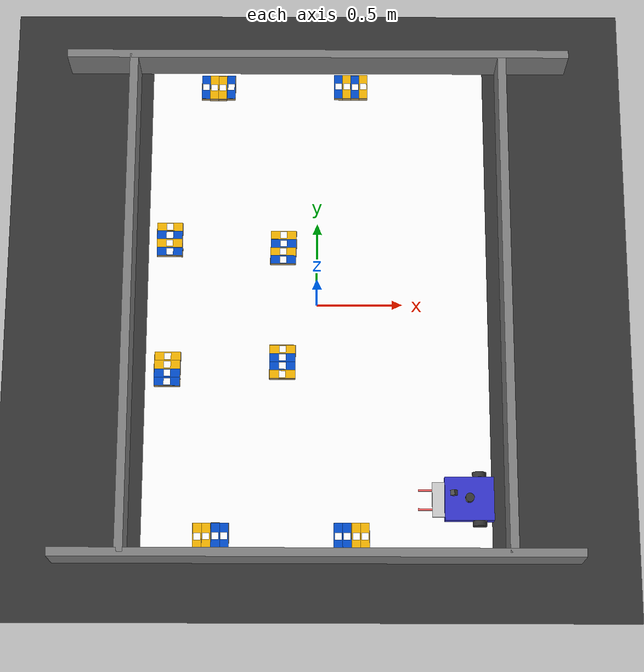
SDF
<sdf version='1.9'>
  <world name='eurobot_2026_arena'>
    <gravity>0 0 -9.81</gravity>
    <physics type='ode'>
      <max_step_size>0.001</max_step_size>
      <real_time_factor>1</real_time_factor>
      <real_time_update_rate>1000</real_time_update_rate>
    </physics>

    <plugin
    filename="libignition-gazebo-physics-system.so"
    name="ignition::gazebo::systems::Physics">
    </plugin>
    <plugin
    filename="libignition-gazebo-user-commands-system.so"
    name="ignition::gazebo::systems::UserCommands">
    </plugin>
    <plugin
    filename="libignition-gazebo-scene-broadcaster-system.so"
    name="ignition::gazebo::systems::SceneBroadcaster">
    </plugin>

    <magnetic_field>6e-06 2.3e-05 -4.2e-05</magnetic_field>
    <atmosphere type='adiabatic'/>

    <scene>
      <ambient>0.4 0.4 0.4 1</ambient>
      <background>0.7 0.7 0.7 1</background>
      <shadows>true</shadows>
    </scene>

    <model name='ground_plane'>
      <static>true</static>
      <link name='link'>
        <collision name='collision'>
          <geometry>
            <plane>
              <normal>0 0 1</normal>
              <size>20 20</size>
            </plane>
          </geometry>
          <surface>
            <friction><ode/></friction>
            <bounce/>
            <contact/>
          </surface>
        </collision>
        <visual name='visual'>
          <geometry>
            <plane>
              <normal>0 0 1</normal>
              <size>20 20</size>
            </plane>
          </geometry>
          <material>
            <ambient>0.8 0.8 0.8 1</ambient>
            <diffuse>0.2 0.2 0.2 1</diffuse>
            <specular>0.8 0.8 0.8 1</specular>
          </material>
        </visual>
        <pose>0 0 0 0 0 0</pose>
        <inertial>
          <pose>0 0 0 0 0 0</pose>
          <mass>1</mass>
          <inertia>
            <ixx>1</ixx><ixy>0</ixy><ixz>0</ixz>
            <iyy>1</iyy><iyz>0</iyz><izz>1</izz>
          </inertia>
        </inertial>
        <enable_wind>false</enable_wind>
      </link>
      <pose>0 0 0 0 0 0</pose>
      <self_collide>false</self_collide>
    </model>

    <model name="arena_walls">
  <static>true</static>

  <!-- North wall -->
  <link name="north_wall">
    <pose>0 1.5 0.125 0 0 0</pose>
    <collision name="collision">
      <geometry>
        <box>
          <size>3.0 0.05 0.25</size>
        </box>
      </geometry>
    </collision>
    <visual name="visual">
      <geometry>
        <box>
          <size>3.0 0.05 0.25</size>
        </box>
      </geometry>
      <material>
        <ambient>0.5 0.5 0.5 1</ambient>
        <diffuse>0.5 0.5 0.5 1</diffuse>
      </material>
    </visual>
  </link>

  <!-- South wall -->
  <link name="south_wall">
    <pose>0 -1.5 0.125 0 0 0</pose>
    <collision name="collision">
      <geometry>
        <box>
          <size>3.0 0.05 0.25</size>
        </box>
      </geometry>
    </collision>
    <visual name="visual">
      <geometry>
        <box>
          <size>3.0 0.05 0.25</size>
        </box>
      </geometry>
      <material>
        <ambient>0.5 0.5 0.5 1</ambient>
        <diffuse>0.5 0.5 0.5 1</diffuse>
      </material>
    </visual>
  </link>

  <!-- East wall -->
  <link name="east_wall">
    <pose>1.1 0 0.125 0 0 0</pose>
    <collision name="collision">
      <geometry>
        <box>
          <size>0.05 3.0 0.25</size>
        </box>
      </geometry>
    </collision>
    <visual name="visual">
      <geometry>
        <box>
          <size>0.05 3.0 0.25</size>
        </box>
      </geometry>
      <material>
        <ambient>0.5 0.5 0.5 1</ambient>
        <diffuse>0.5 0.5 0.5 1</diffuse>
      </material>
    </visual>
  </link>

  <!-- West wall -->
  <link name="west_wall">
    <pose>-1.1 0 0.125 0 0 0</pose>
    <collision name="collision">
      <geometry>
        <box>
          <size>0.05 3.0 0.25</size>
        </box>
      </geometry>
    </collision>
    <visual name="visual">
      <geometry>
        <box>
          <size>0.05 3.0 0.25</size>
        </box>
      </geometry>
      <material>
        <ambient>0.5 0.5 0.5 1</ambient>
        <diffuse>0.5 0.5 0.5 1</diffuse>
      </material>
    </visual>
  </link>

</model>

    <!-- Include models with absolute paths -->
    <include>
      <uri>model://mat</uri>
      <name>floor_mat</name>
      <pose>0 -0.00433 0 0 0 0</pose>
    </include>

    <include>
      <uri>model://simple_robot</uri>
      <name>simple_robot</name>
      <pose>0.868771 -1.16123 0.0035 0 0 3.1415</pose>
    </include>

    <!-- Blue Crates -->
    <include>
      <uri>model://crate</uri>
      <name>crate</name>
      <pose>0.123039 -1.3753 0.018499 0 0 -1.5642</pose>
    </include>

    <include>
      <uri>model://crate</uri>
      <name>crate_1</name>
      <pose>0.173038 -1.37506 0.0185 0 0 -1.5642</pose>
    </include>

    <include>
      <uri>model://crate</uri>
      <name>crate_2</name>
      <pose>-0.52415 -1.37532 0.0185 -0 -0 -1.5642</pose>
    </include>

    <include>
      <uri>model://crate</uri>
      <name>crate_3</name>
      <pose>-0.574153 -1.375 0.018499 0 0 -1.5642</pose>
    </include>

    <include>
      <uri>model://crate</uri>
      <name>crate_4</name>
      <pose>-0.870598 -0.472588 0.018499 -0 -0 3.13271</pose>
    </include>

    <include>
      <uri>model://crate</uri>
      <name>crate_5</name>
      <pose>-0.870996 -0.422215 0.0185 -0 -0 3.13766</pose>
    </include>

    <include>
      <uri>model://crate</uri>
      <name>crate_6</name>
      <pose>-0.873079 0.321639 0.018499 0 0 3.13271</pose>
    </include>

    <include>
      <uri>model://crate</uri>
      <name>crate_7</name>
      <pose>-0.875191 0.424269 0.0185 -0 -0 3.13678</pose>
    </include>

    <include>
      <uri>model://crate</uri>
      <name>crate_8</name>
      <pose>-0.677266 1.37341 0.0185 -0 0 1.56396</pose>
    </include>

    <include>
      <uri>model://crate</uri>
      <name>crate_9</name>
      <pose>-0.525644 1.37394 0.018499 0 -0 1.56191</pose>
    </include>

    <include>
      <uri>model://crate</uri>
      <name>crate_10</name>
      <pose>0.125086 1.37882 0.0185 -0 -0 1.56979</pose>
    </include>

    <include>
      <uri>model://crate</uri>
      <name>crate_11</name>
      <pose>0.225085 1.37758 0.0185 -0 -0 1.56979</pose>
    </include>

    <include>
      <uri>model://crate</uri>
      <name>crate_12</name>
      <pose>-0.198373 0.372357 0.0185 0 -0 3.13698</pose>
    </include>

    <include>
      <uri>model://crate</uri>
      <name>crate_13</name>
      <pose>-0.201906 0.272373 0.0185 -0 -0 3.13697</pose>
    </include>

    <include>
      <uri>model://crate</uri>
      <name>crate_14</name>
      <pose>-0.201321 -0.327593 0.0185 0 0 3.13843</pose>
    </include>

    <include>
      <uri>model://crate</uri>
      <name>crate_15</name>
      <pose>-0.201382 -0.377593 0.0185 -0 -0 3.13843</pose>
    </include>

    <!-- Yellow Crates -->
    <include>
      <uri>model://crate_yellow</uri>
      <name>crate_yellow_1</name>
      <pose>0.22501 -1.37446 0.018499 0 0 1.57972</pose>
    </include>

    <include>
      <uri>model://crate_yellow</uri>
      <name>crate_yellow_2</name>
      <pose>0.275049 -1.37451 0.018499 -0 -0 1.57972</pose>
    </include>

    <include>
      <uri>model://crate_yellow</uri>
      <name>crate_yellow_3</name>
      <pose>0.175086 1.37855 0.0185 -0 0 1.56979</pose>
    </include>

    <include>
      <uri>model://crate_yellow</uri>
      <name>crate_yellow_4</name>
      <pose>0.275086 1.37884 0.0185 0 -0 1.56979</pose>
    </include>

    <include>
      <uri>model://crate_yellow</uri>
      <name>crate_yellow_5</name>
      <pose>-0.626897 -1.37615 0.018499 -0 0 1.57972</pose>
    </include>

    <include>
      <uri>model://crate_yellow</uri>
      <name>crate_yellow_6</name>
      <pose>-0.677176 -1.3772 0.018499 -0 0 1.57972</pose>
    </include>

    <include>
      <uri>model://crate_yellow</uri>
      <name>crate_yellow_7</name>
      <pose>-0.871546 -0.371693 0.0185 -0 0 0.003064</pose>
    </include>

    <include>
      <uri>model://crate_yellow</uri>
      <name>crate_yellow_8</name>
      <pose>-0.869885 -0.321019 0.018499 0 -0 0.003176</pose>
    </include>

    <include>
      <uri>model://crate_yellow</uri>
      <name>crate_yellow_9</name>
      <pose>-0.875168 0.373791 0.0185 0 -0 0.001573</pose>
    </include>

    <include>
      <uri>model://crate_yellow</uri>
      <name>crate_yellow_10</name>
      <pose>-0.875208 0.474528 0.0185 -0 0 -0.001354</pose>
    </include>

    <include>
      <uri>model://crate_yellow</uri>
      <name>crate_yellow_11</name>
      <pose>-0.627211 1.37193 0.0185 0 -0 1.56481</pose>
    </include>

    <include>
      <uri>model://crate_yellow</uri>
      <name>crate_yellow_12</name>
      <pose>-0.577043 1.37114 0.0185 0 -0 1.5671</pose>
    </include>

    <include>
      <uri>model://crate_yellow</uri>
      <name>crate_yellow_13</name>
      <pose>-0.199325 0.424578 0.018499 -0 -0 -0.001354</pose>
    </include>

    <include>
      <uri>model://crate_yellow</uri>
      <name>crate_yellow_14</name>
      <pose>-0.201084 0.32237 0.0185 -0 -0 -0.004617</pose>
    </include>

    <include>
      <uri>model://crate_yellow</uri>
      <name>crate_yellow_15</name>
      <pose>-0.200865 -0.277595 0.0185 -0 0 -0.003162</pose>
    </include>

    <include>
      <uri>model://crate_yellow</uri>
      <name>crate_yellow_16</name>
      <pose>-0.201808 -0.427592 0.0185 0 0 -0.00316</pose>
    </include>

    <!-- Light -->
    <light name="sun" type="directional">
      <pose>0 0 0 0 0 0</pose>
      <cast_shadows>false</cast_shadows>
      <intensity>1</intensity>
      <direction>-0.5 0.5 -1</direction>
      <diffuse>1 1 1 1</diffuse>
      <specular>0.5 0.5 0.5 1</specular>
    </light>

  </world>
</sdf>

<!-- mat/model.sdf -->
<sdf version="1.9">
  <!-- Define a floor mat (3000mm x 2000mm x 70mm) -->
	<model name="floor_mat">
		<static>true</static>
		<link name="floor_link">
			<collision name="collision">
				<geometry>
					<box>
						<size>2 3 0.007</size>  <!-- 3000mm x 2000mm x 70mm -->
					</box>
				</geometry>
				<surface>
					<friction>
						<ode>
							<mu>0.9</mu>
							<mu2>0.9</mu2>
						</ode>
					</friction>
				</surface>
			</collision>
			<visual name="visual">
					<geometry>
							<box>
									<size>2 3 0.007</size> <!-- 3000mm x 2000mm x 70mm -->
							</box>
					</geometry>
					<material>
							<diffuse>1 1 1 1</diffuse>
							<pbr>
									<metal>
											<albedo_map>model://mat/mat_small.png</albedo_map>
											<metalness>0.0</metalness>
											<roughness>0.8</roughness>
									</metal>
							</pbr>
					</material>
			</visual>
		</link>
	</model>
</sdf>

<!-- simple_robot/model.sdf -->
<sdf version="1.9">
  <model name="simple_robot" canonical_link="base_link">
    <static>false</static>
    <pose>0 0 0 0 0 0</pose>

    <!-- ====================== BASE LINK ====================== -->
    <!-- Base dimensions: 280mm x 250mm x 70mm -->
    <!-- Base center is at wheel center height (25mm) -->
    <link name="base_link">
      <pose relative_to="__model__">0 0 0.025 0 0 0</pose>
      <inertial>
        <mass>3.0</mass>
        <inertia>
          <ixx>0.0186</ixx>
          <ixy>0</ixy>
          <ixz>0</ixz>
          <iyy>0.0228</iyy>
          <iyz>0</iyz>
          <izz>0.0391</izz>
        </inertia>
      </inertial>
      <visual name="base_visual">
        <geometry>
          <box><size>0.28 0.25 0.07</size></box>
        </geometry>
        <material>
          <ambient>0.2 0.2 0.8 1</ambient>
          <diffuse>0.2 0.2 0.8 1</diffuse>
          <specular>0.4 0.4 0.9 1</specular>
        </material>
      </visual>
      <collision name="base_collision">
        <geometry>
          <box><size>0.28 0.25 0.07</size></box>
        </geometry>
      </collision>
    </link>

    <!-- ====================== BASE FOOTPRINT ====================== -->
    <link name="base_footprint">
      <pose relative_to="base_link">0 0 -0.025 0 0 0</pose>
    </link>

    <joint name="base_to_footprint" type="fixed">
      <parent>base_link</parent>
      <child>base_footprint</child>
    </joint>

    <!-- ====================== LEFT WHEEL ====================== -->
    <!-- Wheel: 80mm diameter (40mm radius), 30mm width -->
    <!-- Position: 80mm from rear edge = -0.06m from base center -->
    <!-- Wheelbase: 220mm = 0.11m from center to each side -->
    <!-- Wheels OUTSIDE the base: 250mm/2 = 125mm + 15mm (half wheel width) = 140mm from center -->
    <link name="left_wheel">
      <pose relative_to="base_link">-0.06 0.14 0 -1.5707 0 0</pose>
      <inertial>
        <mass>0.3</mass>
        <inertia>
          <ixx>0.000240</ixx>
          <ixy>0</ixy>
          <ixz>0</ixz>
          <iyy>0.000240</iyy>
          <iyz>0</iyz>
          <izz>0.000480</izz>
        </inertia>
      </inertial>
      <visual name="wheel_visual">
        <geometry>
          <cylinder>
            <radius>0.04</radius>
            <length>0.03</length>
          </cylinder>
        </geometry>
        <material>
          <ambient>0.1 0.1 0.1 1</ambient>
          <diffuse>0.2 0.2 0.2 1</diffuse>
          <specular>0.3 0.3 0.3 1</specular>
        </material>
      </visual>
      <collision name="wheel_collision">
        <geometry>
          <cylinder>
            <radius>0.04</radius>
            <length>0.03</length>
          </cylinder>
        </geometry>
        <surface>
          <friction>
            <ode>
              <mu>1.0</mu>
              <mu2>1.0</mu2>
              <slip1>0.0</slip1>
              <slip2>0.0</slip2>
            </ode>
          </friction>
          <contact>
            <ode>
              <kp>1e6</kp>
              <kd>100</kd>
            </ode>
          </contact>
        </surface>
      </collision>
    </link>

    <!-- ====================== RIGHT WHEEL ====================== -->
    <link name="right_wheel">
      <pose relative_to="base_link">-0.06 -0.14 0 -1.5707 0 0</pose>
      <inertial>
        <mass>0.3</mass>
        <inertia>
          <ixx>0.000240</ixx>
          <ixy>0</ixy>
          <ixz>0</ixz>
          <iyy>0.000240</iyy>
          <iyz>0</iyz>
          <izz>0.000480</izz>
        </inertia>
      </inertial>
      <visual name="wheel_visual">
        <geometry>
          <cylinder>
            <radius>0.04</radius>
            <length>0.03</length>
          </cylinder>
        </geometry>
        <material>
          <ambient>0.1 0.1 0.1 1</ambient>
          <diffuse>0.2 0.2 0.2 1</diffuse>
          <specular>0.3 0.3 0.3 1</specular>
        </material>
      </visual>
      <collision name="wheel_collision">
        <geometry>
          <cylinder>
            <radius>0.04</radius>
            <length>0.03</length>
          </cylinder>
        </geometry>
        <surface>
          <friction>
            <ode>
              <mu>1.0</mu>
              <mu2>1.0</mu2>
              <slip1>0.0</slip1>
              <slip2>0.0</slip2>
            </ode>
          </friction>
          <contact>
            <ode>
              <kp>1e6</kp>
              <kd>100</kd>
            </ode>
          </contact>
        </surface>
      </collision>
    </link>

    <!-- ====================== CASTER WHEEL ====================== -->
    <link name="caster">
      <pose relative_to="base_link">0.11 0 -0.020 0 0 0</pose>
      <inertial>
        <mass>0.05</mass>
        <inertia>
          <ixx>0.00008</ixx>
          <ixy>0</ixy>
          <ixz>0</ixz>
          <iyy>0.00008</iyy>
          <iyz>0</iyz>
          <izz>0.00008</izz>
        </inertia>
      </inertial>
      <visual name="caster_visual">
        <geometry>
          <sphere><radius>0.020</radius></sphere>
        </geometry>
        <material>
          <ambient>0.3 0.3 0.3 1</ambient>
          <diffuse>0.5 0.5 0.5 1</diffuse>
          <specular>0.8 0.8 0.8 1</specular>
        </material>
      </visual>
      <collision name="caster_collision">
        <geometry>
          <sphere><radius>0.020</radius></sphere>
        </geometry>
        <surface>
          <friction>
            <ode>
              <mu>0.01</mu>
              <mu2>0.01</mu2>
              <slip1>1.0</slip1>
              <slip2>1.0</slip2>
            </ode>
          </friction>
          <contact>
            <ode>
              <kp>1e6</kp>
              <kd>100</kd>
            </ode>
          </contact>
        </surface>
      </collision>
    </link>

    <!-- ====================== GRIPPER BASE ====================== -->
    <!-- Mounted at front, height adjusted for crate pickup from longest side (150mm) -->
    <link name="gripper_base">
      <pose relative_to="base_link">0.17 0 -0.02 0 0 0</pose>
      <inertial>
        <mass>0.3</mass>
        <inertia>
          <ixx>0.0002</ixx>
          <iyy>0.0002</iyy>
          <izz>0.0002</izz>
          <ixy>0</ixy>
          <ixz>0</ixz>
          <iyz>0</iyz>
        </inertia>
      </inertial>
      <visual name="gripper_base_visual">
        <geometry>
          <box><size>0.08 0.20 0.03</size></box>
        </geometry>
        <material>
          <ambient>0.7 0.7 0.7 1</ambient>
          <diffuse>0.8 0.8 0.8 1</diffuse>
          <specular>0.9 0.9 0.9 1</specular>
        </material>
      </visual>
      <collision name="gripper_base_collision">
        <geometry>
          <box><size>0.08 0.20 0.03</size></box>
        </geometry>
      </collision>
    </link>

    <!-- ====================== LEFT GRIPPER FINGER ====================== -->
    <!-- Grips crate from 150mm (longest) side, positioned to grab 30mm height -->
    <link name="left_finger">
      <pose relative_to="gripper_base">0.04  0.055 0.0 0 0 0</pose>
      <inertial>
        <mass>0.08</mass>
        <inertia>
          <ixx>0.00008</ixx>
          <iyy>0.00002</iyy>
          <izz>0.00008</izz>
          <ixy>0</ixy>
          <ixz>0</ixz>
          <iyz>0</iyz>
        </inertia>
      </inertial>
      <visual name="left_finger_visual">
        <geometry>
          <box><size>0.16 0.01 0.02</size></box>
        </geometry>
        <material>
          <ambient>0.9 0.3 0.3 1</ambient>
          <diffuse>1.0 0.4 0.4 1</diffuse>
          <specular>1.0 0.6 0.6 1</specular>
        </material>
      </visual>
      <collision name="left_finger_collision">
        <geometry>
          <box><size>0.16 0.01 0.02</size></box>
        </geometry>
        <surface>
          <friction>
            <ode>
              <mu>8.0</mu>
              <mu2>8.0</mu2>
            </ode>
          </friction>
          <contact>
            <ode>
              <kp>1e6</kp>
              <kd>100</kd>
              <max_vel>0.01</max_vel>
              <min_depth>0.001</min_depth>
            </ode>
          </contact>
        </surface>
      </collision>
      <sensor name="left_finger_contact" type="contact">
    <always_on>true</always_on>
    <update_rate>200</update_rate>
    <contact>
      <collision>left_finger_collision</collision>
    </contact>
    <topic>/gripper/left/contact</topic>
  </sensor>
    </link>

    <!-- ====================== RIGHT GRIPPER FINGER ====================== -->
    <link name="right_finger">
      <pose relative_to="gripper_base">0.04  -0.055 0.0 0 0 0</pose>
      <inertial>
        <mass>0.08</mass>
        <inertia>
          <ixx>0.00008</ixx>
          <iyy>0.00002</iyy>
          <izz>0.00008</izz>
          <ixy>0</ixy>
          <ixz>0</ixz>
          <iyz>0</iyz>
        </inertia>
      </inertial>
      <visual name="right_finger_visual">
        <geometry>
          <box><size>0.16 0.01 0.02</size></box>
        </geometry>
        <material>
          <ambient>0.9 0.3 0.3 1</ambient>
          <diffuse>1.0 0.4 0.4 1</diffuse>
          <specular>1.0 0.6 0.6 1</specular>
        </material>
      </visual>
      <collision name="right_finger_collision">
        <geometry>
          <box><size>0.16 0.01 0.02</size></box>
        </geometry>
        <surface>
          <friction>
            <ode>
              <mu>8.0</mu>
              <mu2>8.0</mu2>
            </ode>
          </friction>
          <contact>
            <ode>
              <kp>1e6</kp>
              <kd>100</kd>
              <max_vel>0.01</max_vel>
              <min_depth>0.001</min_depth>
            </ode>
          </contact>
        </surface>
      </collision>
      <sensor name="right_finger_contact" type="contact">
  <always_on>true</always_on>
  <update_rate>200</update_rate>
  <contact>
    <collision>right_finger_collision</collision>
  </contact>
  <topic>/gripper/right/contact</topic>
</sensor>
    </link>

    <!-- ====================== LIDAR LINK ====================== -->
    <!-- Mounted on top of base for 360° visibility -->
    <link name="lidar_link">
      <pose relative_to="base_link">0 0 0.050 0 0 0</pose>
      <inertial>
        <mass>0.1</mass>
        <inertia>
          <ixx>0.00002</ixx>
          <iyy>0.00002</iyy>
          <izz>0.00002</izz>
          <ixy>0</ixy>
          <ixz>0</ixz>
          <iyz>0</iyz>
        </inertia>
      </inertial>
      <visual name="lidar_visual">
        <geometry>
          <cylinder>
            <radius>0.025</radius>
            <length>0.04</length>
          </cylinder>
        </geometry>
        <material>
          <ambient>0.1 0.1 0.1 1</ambient>
          <diffuse>0.2 0.2 0.2 1</diffuse>
          <specular>0.3 0.3 0.3 1</specular>
        </material>
      </visual>
      <sensor name="lidar_sensor" type="gpu_lidar">
        <topic>/scan</topic>
        <update_rate>10</update_rate>
        <always_on>true</always_on>
        <visualize>true</visualize>
        <lidar>
          <scan>
            <horizontal>
              <samples>360</samples>
              <resolution>1</resolution>
              <min_angle>-3.14159</min_angle>
              <max_angle>3.14159</max_angle>
            </horizontal>
            <vertical>
              <samples>1</samples>
              <resolution>1</resolution>
              <min_angle>0</min_angle>
              <max_angle>0</max_angle>
            </vertical>
          </scan>
          <range>
            <min>0.08</min>
            <max>10.0</max>
            <resolution>0.01</resolution>
          </range>
          <noise>
            <type>gaussian</type>
            <mean>0.0</mean>
            <stddev>0.01</stddev>
          </noise>
        </lidar>
        <frame_id>lidar_link</frame_id>
      </sensor>
    </link>

    <!-- ====================== CAMERA LINK ====================== -->
    <link name="camera_link">
      <pose relative_to="base_link">0.10 0 0.20 0 0.7 0</pose>
      <inertial>
        <mass>0.05</mass>
        <inertia>
          <ixx>0.00001</ixx>
          <iyy>0.00001</iyy>
          <izz>0.00001</izz>
          <ixy>0</ixy>
          <ixz>0</ixz>
          <iyz>0</iyz>
        </inertia>
      </inertial>
      <visual name="camera_visual">
        <geometry>
          <box><size>0.03 0.03 0.03</size></box>
        </geometry>
        <material>
          <ambient>0.2 0.2 0.2 1</ambient>
          <diffuse>0.3 0.3 0.3 1</diffuse>
          <specular>0.5 0.5 0.5 1</specular>
        </material>
      </visual>
      <sensor name="camera_sensor" type="camera">
        <always_on>true</always_on>
        <update_rate>30</update_rate>
        <visualize>true</visualize>
        <camera>
          <horizontal_fov>1.047</horizontal_fov>
          <image>
            <width>640</width>
            <height>480</height>
            <format>R8G8B8</format>
          </image>
          <clip>
            <near>0.1</near>
            <far>100</far>
          </clip>
          <noise>
            <type>gaussian</type>
            <mean>0.0</mean>
            <stddev>0.007</stddev>
          </noise>
        </camera>
        <topic>/camera</topic>
      </sensor>
    </link>

    <!-- ====================== JOINTS ====================== -->

    <!-- Wheel Joints -->
    <joint name="left_wheel_joint" type="revolute">
      <parent>base_link</parent>
      <child>left_wheel</child>
      <axis>
        <xyz>0 0 1</xyz>
        <limit>
          <lower>-1e16</lower>
          <upper>1e16</upper>
        </limit>
      </axis>
    </joint>

    <joint name="right_wheel_joint" type="revolute">
      <parent>base_link</parent>
      <child>right_wheel</child>
      <axis>
        <xyz>0 0 1</xyz>
        <limit>
          <lower>-1e16</lower>
          <upper>1e16</upper>
        </limit>
      </axis>
    </joint>

    <!-- Caster Joint -->
    <joint name="caster_joint" type="fixed">
      <parent>base_link</parent>
      <child>caster</child>
    </joint>

    <!-- Gripper Joints -->
    <joint name="gripper_base_joint" type="fixed">
      <parent>base_link</parent>
      <child>gripper_base</child>
    </joint>

    <joint name="left_finger_joint" type="prismatic">
  <parent>gripper_base</parent>
  <child>left_finger</child>

  <axis>
    <xyz>0 1 0</xyz>

    <limit>
      <!-- Allows finger to move inward and outward -->
      <lower>-0.04</lower>
      <upper>0.04</upper>
      <effort>40</effort>
      <velocity>0.05</velocity>
    </limit>

    <dynamics>
      <damping>3.0</damping>
      <friction>0.5</friction>
    </dynamics>
  </axis>
  </joint>

    <joint name="right_finger_joint" type="prismatic">
  <parent>gripper_base</parent>
  <child>right_finger</child>

  <axis>
    <xyz>0 -1 0</xyz>

    <limit>

      <lower>-0.04</lower>
      <upper>0.04</upper>
      <effort>40</effort>
      <velocity>0.05</velocity>
    </limit>

    <dynamics>
      <damping>3.0</damping>
      <friction>0.5</friction>
    </dynamics>
  </axis>
  </joint>

    <!-- Sensor Joints -->
    <joint name="lidar_joint" type="fixed">
      <parent>base_link</parent>
      <child>lidar_link</child>
    </joint>

    <joint name="camera_joint" type="fixed">
      <parent>base_link</parent>
      <child>camera_link</child>
    </joint>

    <!-- ====================== DIFFERENTIAL DRIVE PLUGIN ====================== -->
    <plugin
      filename="libignition-gazebo-diff-drive-system.so"
      name="ignition::gazebo::systems::DiffDrive">
      <left_joint>left_wheel_joint</left_joint>
      <right_joint>right_wheel_joint</right_joint>
      <wheel_separation>0.28</wheel_separation>
      <wheel_radius>0.04</wheel_radius>
      <odom_publish_frequency>50</odom_publish_frequency>
      <topic>cmd_vel</topic>
      <odom_topic>odom</odom_topic>
      <tf_topic>/tf</tf_topic>
      <frame_id>odom</frame_id>
      <child_frame_id>base_link</child_frame_id>
      <max_linear_acceleration>2.0</max_linear_acceleration>
      <max_angular_acceleration>3.0</max_angular_acceleration>
      <max_linear_velocity>1.0</max_linear_velocity>
      <max_angular_velocity>2.0</max_angular_velocity>
    </plugin>

    <!-- ====================== JOINT STATE PUBLISHER ====================== -->
    <plugin
      filename="libignition-gazebo-joint-state-publisher-system.so"
      name="ignition::gazebo::systems::JointStatePublisher">
      <joint_name>left_wheel_joint</joint_name>
      <joint_name>right_wheel_joint</joint_name>
      <joint_name>left_finger_joint</joint_name>
      <joint_name>right_finger_joint</joint_name>
      <topic>/joint_states</topic>
      <update_rate>50</update_rate>
    </plugin>

    <!-- ====================== SENSORS SYSTEM ====================== -->
    <plugin
      filename="libignition-gazebo-sensors-system.so"
      name="ignition::gazebo::systems::Sensors">
      <render_engine>ogre2</render_engine>
    </plugin>

    <!-- ====================== POSE PUBLISHER ====================== -->
    <plugin
      filename="libignition-gazebo-pose-publisher-system.so"
      name="ignition::gazebo::systems::PosePublisher">
      <publish_link_pose>true</publish_link_pose>
      <publish_collision_pose>false</publish_collision_pose>
      <publish_visual_pose>false</publish_visual_pose>
      <publish_nested_model_pose>true</publish_nested_model_pose>
      <use_pose_vector_msg>true</use_pose_vector_msg>
      <static_publisher>true</static_publisher>
      <static_update_frequency>10</static_update_frequency>
    </plugin>
    <!-- ====================== Contact Sensor ====================== -->
    <plugin filename="libignition-gazebo-contact-system.so"
        name="ignition::gazebo::systems::Contact">
    </plugin>
    <!-- ====================== ROS2_CONTROL DEFINITION ====================== -->
    <ros2_control name="GripperSystem" type="system">
    <hardware>
    <plugin>ign_ros2_control/IgnitionSystem</plugin>
    </hardware>

    <joint name="left_finger_joint">
    <command_interface name="position">
      <param name="min">-0.04</param>
      <param name="max">0.04</param>
    </command_interface>
    <state_interface name="position"/>
    <state_interface name="velocity"/>
    <state_interface name="effort"/>
    </joint>

    <joint name="right_finger_joint">
    <command_interface name="position">
      <param name="min">-0.04</param>
      <param name="max">0.04</param>
    </command_interface>
    <state_interface name="position"/>
    <state_interface name="velocity"/>
    <state_interface name="effort"/>
  </joint>
  </ros2_control>

<!-- ====================== IGN_ROS2_CONTROL PLUGIN ====================== -->
<plugin
  filename="libign_ros2_control-system.so"
  name="ign_ros2_control::IgnitionROS2ControlPlugin">
  <parameters>$ENV{GRIPPER_CONTROLLER_YAML}</parameters>
</plugin>

  </model>
</sdf>

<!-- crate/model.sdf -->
<sdf version="1.9">
  <model name="crate_blue">
    <static>false</static>
    <link name="link">
      <inertial>
        <mass>0.17</mass>
        <inertia>
          <ixx>0.000047</ixx>
          <iyy>0.000336</iyy>
          <izz>0.000361</izz>
          <ixy>0</ixy>
          <ixz>0</ixz>
          <iyz>0</iyz>
        </inertia>
      </inertial>

      <!-- Single collision box for the entire crate -->
      <collision name="collision">
        <geometry>
          <box>
            <size>0.15 0.05 0.03</size>
          </box>
        </geometry>
        <surface>
          <friction>
            <ode>
              <mu>1.0</mu>
              <mu2>1.0</mu2>
            </ode>
          </friction>
          <bounce/>
          <contact/>
        </surface>
      </collision>

      <!-- TOP FACE: Blue plastic base (NO texture here)                -->
      <visual name="visual_top_base">
        <pose>0 0 0.015 0 0 0</pose>
        <geometry>
          <box>
            <size>0.15 0.05 0.001</size>
          </box>
        </geometry>
        <material>
          <ambient>0.0 0.3 0.8 1</ambient>
          <diffuse>0.0 0.3 0.8 1</diffuse>
          <specular>0.2 0.2 0.2 1</specular>
        </material>
      </visual>

      <!-- ArUco marker ID 36 (40mm × 40mm) centered on TOP face -->
      <visual name="aruco_top">
        <pose>0 0 0.0155 0 0 0</pose>  <!-- 0.1mm above blue surface -->
        <geometry>
          <box>
            <size>0.04 0.04 0.0001</size>  <!-- 40mm × 40mm × 0.1mm -->
          </box>
        </geometry>
        <material>
          <!-- WHITE material = no color tinting -->
          <ambient>1.0 1.0 1.0 1.0</ambient>
          <diffuse>1.0 1.0 1.0 1.0</diffuse>
          <specular>0.1 0.1 0.1 1.0</specular>
          <emissive>0.0 0.0 0.0 1.0</emissive>

          <pbr>
            <metal>
              <albedo_map>model://crate/materials/textures/aruco_blue_36.png</albedo_map>
            </metal>
          </pbr>
        </material>
      </visual>

      <!-- BOTTOM FACE: Yellow plastic base (NO texture here)           -->
      <visual name="visual_bottom_base">
        <pose>0 0 -0.015 0 0 0</pose>
        <geometry>
          <box>
            <size>0.15 0.05 0.001</size>
          </box>
        </geometry>
        <material>
          <ambient>0.95 0.7 0.0 1</ambient>
          <diffuse>0.95 0.7 0.0 1</diffuse>
          <specular>0.2 0.2 0.2 1</specular>
        </material>
      </visual>

      <!-- ArUco marker ID 47 (40mm × 40mm) centered on BOTTOM face -->
      <visual name="aruco_bottom">
        <pose>0 0 -0.0155 0 0 0</pose>  <!-- 0.1mm below yellow surface -->
        <geometry>
          <box>
            <size>0.04 0.04 0.0001</size>  <!-- 40mm × 40mm × 0.1mm -->
          </box>
        </geometry>
        <material>
          <!-- WHITE material = no color tinting -->
          <ambient>1.0 1.0 1.0 1.0</ambient>
          <diffuse>1.0 1.0 1.0 1.0</diffuse>
          <specular>0.1 0.1 0.1 1.0</specular>
          <emissive>0.0 0.0 0.0 1.0</emissive>

          <pbr>
            <metal>
              <albedo_map>model://crate/materials/textures/aruco_yellow_47.png</albedo_map>
            </metal>
          </pbr>
        </material>
      </visual>

      <!-- SIDE FACES: Natural wood (unchanged)                         -->

      <!-- FRONT FACE: Natural wood (no color) -->
      <visual name="visual_front">
        <pose>0 0.0255 0 1.5708 0 0</pose>
        <geometry>
          <box>
            <size>0.15 0.03 0.001</size>
          </box>
        </geometry>
        <material>
          <ambient>0.7 0.6 0.4 1</ambient>
          <diffuse>0.7 0.6 0.4 1</diffuse>
          <specular>0.1 0.1 0.1 1</specular>
        </material>
      </visual>

      <!-- BACK FACE: Natural wood (no color) -->
      <visual name="visual_back">
        <pose>0 -0.0255 0 1.5708 0 0</pose>
        <geometry>
          <box>
            <size>0.15 0.03 0.001</size>
          </box>
        </geometry>
        <material>
          <ambient>0.7 0.6 0.4 1</ambient>
          <diffuse>0.7 0.6 0.4 1</diffuse>
          <specular>0.1 0.1 0.1 1</specular>
        </material>
      </visual>

      <!-- RIGHT FACE: Natural wood (no color) -->
      <visual name="visual_right">
        <pose>0.0755 0 0 1.5708 0 1.5708</pose>
        <geometry>
          <box>
            <size>0.05 0.03 0.001</size>
          </box>
        </geometry>
        <material>
          <ambient>0.7 0.6 0.4 1</ambient>
          <diffuse>0.7 0.6 0.4 1</diffuse>
          <specular>0.1 0.1 0.1 1</specular>
        </material>
      </visual>

      <!-- LEFT FACE: Natural wood (no color) -->
      <visual name="visual_left">
        <pose>-0.0755 0 0 1.5708 0 1.5708</pose>
        <geometry>
          <box>
            <size>0.05 0.03 0.001</size>
          </box>
        </geometry>
        <material>
          <ambient>0.7 0.6 0.4 1</ambient>
          <diffuse>0.7 0.6 0.4 1</diffuse>
          <specular>0.1 0.1 0.1 1</specular>
        </material>
      </visual>

    </link>
  </model>
</sdf>

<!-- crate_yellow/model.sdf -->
<sdf version="1.9">
  <model name="crate_yellow">
    <static>false</static>
    <link name="link">
      <inertial>
        <mass>0.17</mass>
        <inertia>
          <ixx>0.000047</ixx>
          <iyy>0.000336</iyy>
          <izz>0.000361</izz>
          <ixy>0</ixy>
          <ixz>0</ixz>
          <iyz>0</iyz>
        </inertia>
      </inertial>

      <!-- Single collision box for the entire crate -->
      <collision name="collision">
        <geometry>
          <box>
            <size>0.15 0.05 0.03</size>
          </box>
        </geometry>
        <surface>
          <friction>
            <ode>
              <mu>1.0</mu>
              <mu2>1.0</mu2>
            </ode>
          </friction>
          <bounce/>
          <contact/>
        </surface>
      </collision>

      <!-- TOP FACE: Yellow plastic base (NO texture here)              -->
      <visual name="visual_top_base">
        <pose>0 0 0.015 0 0 0</pose>
        <geometry>
          <box>
            <size>0.15 0.05 0.001</size>
          </box>
        </geometry>
        <material>
          <ambient>0.95 0.7 0.0 1</ambient>
          <diffuse>0.95 0.7 0.0 1</diffuse>
          <specular>0.2 0.2 0.2 1</specular>
        </material>
      </visual>

      <!-- ArUco marker ID 47 (40mm × 40mm) centered on TOP face -->
      <visual name="aruco_top">
        <pose>0 0 0.0155 0 0 0</pose>  <!-- 0.1mm above yellow surface -->
        <geometry>
          <box>
            <size>0.04 0.04 0.0001</size>  <!-- 40mm × 40mm × 0.1mm -->
          </box>
        </geometry>
        <material>
          <!-- WHITE material = no color tinting -->
          <ambient>1.0 1.0 1.0 1.0</ambient>
          <diffuse>1.0 1.0 1.0 1.0</diffuse>
          <specular>0.1 0.1 0.1 1.0</specular>
          <emissive>0.0 0.0 0.0 1.0</emissive>

          <pbr>
            <metal>
              <albedo_map>model://crate_yellow/materials/textures/aruco_yellow_47.png</albedo_map>
            </metal>
          </pbr>
        </material>
      </visual>

      <!-- BOTTOM FACE: Blue plastic base (NO texture here)             -->
      <visual name="visual_bottom_base">
        <pose>0 0 -0.015 0 0 0</pose>
        <geometry>
          <box>
            <size>0.15 0.05 0.001</size>
          </box>
        </geometry>
        <material>
          <ambient>0.0 0.3 0.8 1</ambient>
          <diffuse>0.0 0.3 0.8 1</diffuse>
          <specular>0.2 0.2 0.2 1</specular>
        </material>
      </visual>

      <!-- ArUco marker ID 36 (40mm × 40mm) centered on BOTTOM face -->
      <visual name="aruco_bottom">
        <pose>0 0 -0.0155 0 0 0</pose>  <!-- 0.1mm below blue surface -->
        <geometry>
          <box>
            <size>0.04 0.04 0.0001</size>  <!-- 40mm × 40mm × 0.1mm -->
          </box>
        </geometry>
        <material>
          <!-- WHITE material = no color tinting -->
          <ambient>1.0 1.0 1.0 1.0</ambient>
          <diffuse>1.0 1.0 1.0 1.0</diffuse>
          <specular>0.1 0.1 0.1 1.0</specular>
          <emissive>0.0 0.0 0.0 1.0</emissive>

          <pbr>
            <metal>
              <albedo_map>model://crate_yellow/materials/textures/aruco_blue_36.png</albedo_map>
            </metal>
          </pbr>
        </material>
      </visual>

      <!-- SIDE FACES: Natural wood (unchanged)                         -->

      <!-- FRONT FACE: Natural wood (no color) -->
      <visual name="visual_front">
        <pose>0 0.0255 0 1.5708 0 0</pose>
        <geometry>
          <box>
            <size>0.15 0.03 0.001</size>
          </box>
        </geometry>
        <material>
          <ambient>0.7 0.6 0.4 1</ambient>
          <diffuse>0.7 0.6 0.4 1</diffuse>
          <specular>0.1 0.1 0.1 1</specular>
        </material>
      </visual>

      <!-- BACK FACE: Natural wood (no color) -->
      <visual name="visual_back">
        <pose>0 -0.0255 0 1.5708 0 0</pose>
        <geometry>
          <box>
            <size>0.15 0.03 0.001</size>
          </box>
        </geometry>
        <material>
          <ambient>0.7 0.6 0.4 1</ambient>
          <diffuse>0.7 0.6 0.4 1</diffuse>
          <specular>0.1 0.1 0.1 1</specular>
        </material>
      </visual>

      <!-- RIGHT FACE: Natural wood (no color) -->
      <visual name="visual_right">
        <pose>0.0755 0 0 1.5708 0 1.5708</pose>
        <geometry>
          <box>
            <size>0.05 0.03 0.001</size>
          </box>
        </geometry>
        <material>
          <ambient>0.7 0.6 0.4 1</ambient>
          <diffuse>0.7 0.6 0.4 1</diffuse>
          <specular>0.1 0.1 0.1 1</specular>
        </material>
      </visual>

      <!-- LEFT FACE: Natural wood (no color) -->
      <visual name="visual_left">
        <pose>-0.0755 0 0 1.5708 0 1.5708</pose>
        <geometry>
          <box>
            <size>0.05 0.03 0.001</size>
          </box>
        </geometry>
        <material>
          <ambient>0.7 0.6 0.4 1</ambient>
          <diffuse>0.7 0.6 0.4 1</diffuse>
          <specular>0.1 0.1 0.1 1</specular>
        </material>
      </visual>

    </link>
  </model>
</sdf>
